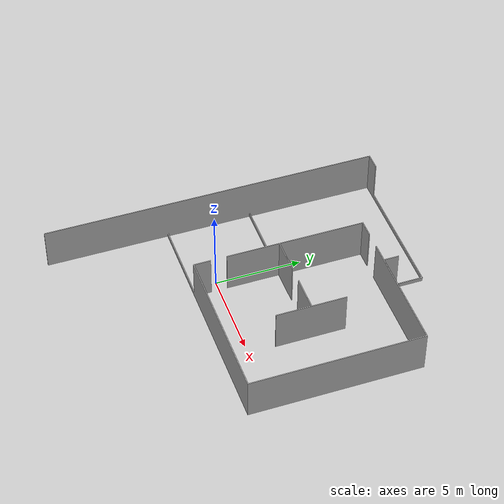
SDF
<?xml version="1.0"?>
<sdf version="1.6">
  <model name="rgo2015/walls">
    <link name="1_link">
      <collision name="1_col">
        <geometry>
          <mesh>
            <uri>model://rgo2015/walls/shape/heightmap.stl</uri>
          </mesh>
        </geometry>
      </collision>
      <visual name="1_vis">
        <geometry>
          <mesh>
            <uri>model://rgo2015/walls/shape/heightmap.stl</uri>
          </mesh>
        </geometry>
      </visual>
      <pose>0 0 0 0 0 0</pose>
    </link>
    <static>true</static>
  </model>
</sdf>
